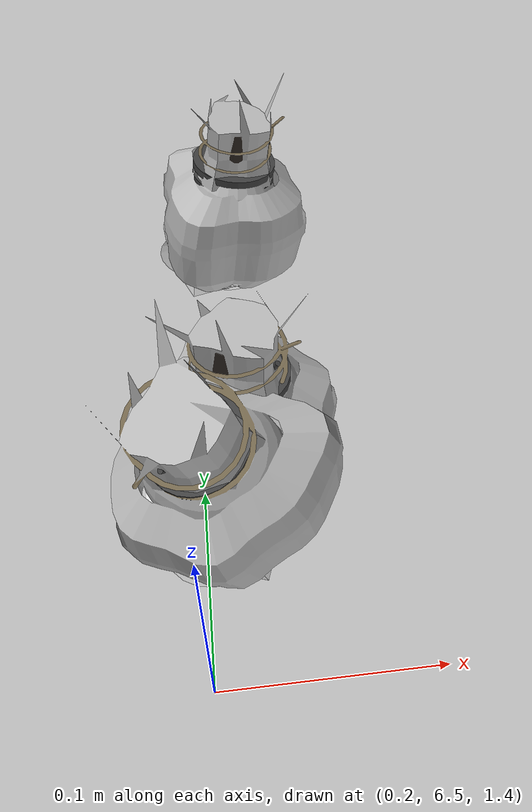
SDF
<sdf version="1.11">
 <world name="peach_orchard">
  <model name="ground">
   <static>true</static>
   <link name="link">
    <visual name="soil">
     <geometry><plane><normal>0 0 1</normal><size>32 22</size></plane></geometry>
     <material>
      <ambient>1 1 1 1</ambient>
      <diffuse>1 1 1 1</diffuse>
      <specular>0.1 0.1 0.1 1</specular>
      <pbr>
       <metal>
        <albedo_map>textures/soil_albedo.png</albedo_map>
        <normal_map type="tangent">textures/soil_normal.png</normal_map>
        <roughness>0.95</roughness>
        <metalness>0</metalness>
       </metal>
      </pbr>
     </material>
    </visual>
    <collision name="c_soil">
     <geometry><plane><normal>0 0 1</normal><size>32 22</size></plane></geometry>
    </collision>
   </link>
  </model>
  <model name="peach_tree_r2_t6_06">
   <pose>0.22 6.71632 1.44753 0 0.122108 0.0433872</pose>
   <static>true</static>
   <link name="bag">
    <visual name="bag_mesh">
     <pose>0 0 0.0466515 0 0 0</pose>
     <geometry>
      <mesh><uri>model://peach_sim/meshes/bagged_peach.glb</uri><scale>0.92563 1.10446 1.06026</scale></mesh>
     </geometry>
    </visual>
    <visual name="body">
     <pose>0 0 0.0286515 0 0 0</pose>
     <geometry><ellipsoid><radii>0.0347111 0.028716 0.0309437</radii></ellipsoid></geometry>
     <material>
      <ambient>1 1 1 1</ambient>
      <diffuse>1 1 1 1</diffuse>
      <specular>0.1 0.1 0.1 1</specular>
      <pbr>
       <metal>
        <albedo_map>textures/paper_bag_albedo.png</albedo_map>
        <normal_map type="tangent">textures/paper_bag_normal.png</normal_map>
        <roughness>0.72</roughness>
        <metalness>0</metalness>
       </metal>
      </pbr>
     </material>
    </visual>
    <visual name="bottom_fold">
     <pose>0 0 0.012 0 0 0.35</pose>
     <geometry><box><size>0.0538022 0.0330234 0.022</size></box></geometry>
     <material>
      <ambient>1 1 1 1</ambient>
      <diffuse>1 1 1 1</diffuse>
      <specular>0.1 0.1 0.1 1</specular>
      <pbr>
       <metal>
        <albedo_map>textures/paper_bag_albedo.png</albedo_map>
        <normal_map type="tangent">textures/paper_bag_normal.png</normal_map>
        <roughness>0.8</roughness>
        <metalness>0</metalness>
       </metal>
      </pbr>
     </material>
    </visual>
    <visual name="fruit">
     <pose>0 0 0.0217971 0 0 0</pose>
     <geometry><sphere><radius>0.028909</radius></sphere></geometry>
     <material>
      <ambient>1 1 1 1</ambient>
      <diffuse>1 1 1 1</diffuse>
      <specular>0.1 0.1 0.1 1</specular>
      <pbr>
       <metal>
        <albedo_map>textures/fruit_skin_albedo.png</albedo_map>
        <normal_map type="tangent">textures/fruit_skin_normal.png</normal_map>
        <roughness>0.55</roughness>
        <metalness>0</metalness>
       </metal>
      </pbr>
     </material>
    </visual>
    <visual name="neck">
     <pose>0 0 0.0663031 0 0 0</pose>
     <geometry><cylinder><radius>0.013</radius><length>0.018</length></cylinder></geometry>
     <material>
      <ambient>1 1 1 1</ambient>
      <diffuse>1 1 1 1</diffuse>
      <specular>0.1 0.1 0.1 1</specular>
      <pbr>
       <metal>
        <albedo_map>textures/paper_bag_albedo.png</albedo_map>
        <normal_map type="tangent">textures/paper_bag_normal.png</normal_map>
        <roughness>0.75</roughness>
        <metalness>0</metalness>
       </metal>
      </pbr>
     </material>
    </visual>
    <visual name="gather">
     <pose>0 0 0.0473031 0 0 0</pose>
     <geometry><cylinder><radius>0.019</radius><length>0.02</length></cylinder></geometry>
     <material>
      <ambient>1 1 1 1</ambient>
      <diffuse>1 1 1 1</diffuse>
      <specular>0.1 0.1 0.1 1</specular>
      <pbr>
       <metal>
        <albedo_map>textures/paper_bag_albedo.png</albedo_map>
        <normal_map type="tangent">textures/paper_bag_normal.png</normal_map>
        <roughness>0.8</roughness>
        <metalness>0</metalness>
       </metal>
      </pbr>
     </material>
    </visual>
    <visual name="inner_paper">
     <pose>0 0 0.0713031 0 0 0</pose>
     <geometry><cylinder><radius>0.01</radius><length>0.008</length></cylinder></geometry>
     <material>
      <ambient>0.180392 0.14902 0.133333 1</ambient>
      <diffuse>0.180392 0.14902 0.133333 1</diffuse>
      <specular>0.1 0.1 0.1 1</specular>
     </material>
    </visual>
    <visual name="wire_0">
     <pose>0 0 0.0613031 0 0 0</pose>
     <geometry><cylinder><radius>0.0205</radius><length>0.0035</length></cylinder></geometry>
     <material>
      <ambient>0.25 0.25 0.25 1</ambient>
      <diffuse>0.25 0.25 0.25 1</diffuse>
      <specular>0.1 0.1 0.1 1</specular>
     </material>
    </visual>
    <visual name="wire_1">
     <pose>0 0 0.0683031 0 0 0</pose>
     <geometry><cylinder><radius>0.0205</radius><length>0.0035</length></cylinder></geometry>
     <material>
      <ambient>0.25 0.25 0.25 1</ambient>
      <diffuse>0.25 0.25 0.25 1</diffuse>
      <specular>0.1 0.1 0.1 1</specular>
     </material>
    </visual>
    <visual name="wire_tail">
     <pose>0.01 0 0.0693031 0 0.521618 0</pose>
     <geometry><cylinder><radius>0.0012</radius><length>0.026</length></cylinder></geometry>
     <material>
      <ambient>0.25 0.25 0.25 1</ambient>
      <diffuse>0.25 0.25 0.25 1</diffuse>
      <specular>0.1 0.1 0.1 1</specular>
     </material>
    </visual>
    <collision name="c_body">
     <pose>0 0 0.0286515 0 0 0</pose>
     <geometry><cylinder><radius>0.0347111</radius><length>0.0573031</length></cylinder></geometry>
    </collision>
   </link>
  </model>
  <model name="peach_tree_r2_t6_07">
   <pose>0.22 6.57905 1.45 0 0.0210568 -0.493681</pose>
   <static>true</static>
   <link name="bag">
    <visual name="bag_mesh">
     <pose>0 0 0.0418149 0 0 -0</pose>
     <geometry>
      <mesh><uri>model://peach_sim/meshes/bagged_peach.glb</uri><scale>0.983505 1.05836 0.950338</scale></mesh>
     </geometry>
    </visual>
    <visual name="body">
     <pose>0 0 0.0238149 0 0 0</pose>
     <geometry><ellipsoid><radii>0.0368814 0.0275174 0.02572</radii></ellipsoid></geometry>
     <material>
      <ambient>1 1 1 1</ambient>
      <diffuse>1 1 1 1</diffuse>
      <specular>0.1 0.1 0.1 1</specular>
      <pbr>
       <metal>
        <albedo_map>textures/paper_bag_albedo.png</albedo_map>
        <normal_map type="tangent">textures/paper_bag_normal.png</normal_map>
        <roughness>0.72</roughness>
        <metalness>0</metalness>
       </metal>
      </pbr>
     </material>
    </visual>
    <visual name="bottom_fold">
     <pose>0 0 0.012 0 0 0.35</pose>
     <geometry><box><size>0.0571662 0.031645 0.022</size></box></geometry>
     <material>
      <ambient>1 1 1 1</ambient>
      <diffuse>1 1 1 1</diffuse>
      <specular>0.1 0.1 0.1 1</specular>
      <pbr>
       <metal>
        <albedo_map>textures/paper_bag_albedo.png</albedo_map>
        <normal_map type="tangent">textures/paper_bag_normal.png</normal_map>
        <roughness>0.8</roughness>
        <metalness>0</metalness>
       </metal>
      </pbr>
     </material>
    </visual>
    <visual name="fruit">
     <pose>0 0 0.0173232 0 0 0</pose>
     <geometry><sphere><radius>0.0242561</radius></sphere></geometry>
     <material>
      <ambient>1 1 1 1</ambient>
      <diffuse>1 1 1 1</diffuse>
      <specular>0.1 0.1 0.1 1</specular>
      <pbr>
       <metal>
        <albedo_map>textures/fruit_skin_albedo.png</albedo_map>
        <normal_map type="tangent">textures/fruit_skin_normal.png</normal_map>
        <roughness>0.55</roughness>
        <metalness>0</metalness>
       </metal>
      </pbr>
     </material>
    </visual>
    <visual name="neck">
     <pose>0 0 0.0566297 0 0 0</pose>
     <geometry><cylinder><radius>0.013</radius><length>0.018</length></cylinder></geometry>
     <material>
      <ambient>1 1 1 1</ambient>
      <diffuse>1 1 1 1</diffuse>
      <specular>0.1 0.1 0.1 1</specular>
      <pbr>
       <metal>
        <albedo_map>textures/paper_bag_albedo.png</albedo_map>
        <normal_map type="tangent">textures/paper_bag_normal.png</normal_map>
        <roughness>0.75</roughness>
        <metalness>0</metalness>
       </metal>
      </pbr>
     </material>
    </visual>
    <visual name="gather">
     <pose>0 0 0.0376297 0 0 0</pose>
     <geometry><cylinder><radius>0.019</radius><length>0.02</length></cylinder></geometry>
     <material>
      <ambient>1 1 1 1</ambient>
      <diffuse>1 1 1 1</diffuse>
      <specular>0.1 0.1 0.1 1</specular>
      <pbr>
       <metal>
        <albedo_map>textures/paper_bag_albedo.png</albedo_map>
        <normal_map type="tangent">textures/paper_bag_normal.png</normal_map>
        <roughness>0.8</roughness>
        <metalness>0</metalness>
       </metal>
      </pbr>
     </material>
    </visual>
    <visual name="inner_paper">
     <pose>0 0 0.0616297 0 0 0</pose>
     <geometry><cylinder><radius>0.01</radius><length>0.008</length></cylinder></geometry>
     <material>
      <ambient>0.180392 0.14902 0.133333 1</ambient>
      <diffuse>0.180392 0.14902 0.133333 1</diffuse>
      <specular>0.1 0.1 0.1 1</specular>
     </material>
    </visual>
    <visual name="wire_0">
     <pose>0 0 0.0516297 0 0 0</pose>
     <geometry><cylinder><radius>0.0205</radius><length>0.0035</length></cylinder></geometry>
     <material>
      <ambient>0.25 0.25 0.25 1</ambient>
      <diffuse>0.25 0.25 0.25 1</diffuse>
      <specular>0.1 0.1 0.1 1</specular>
     </material>
    </visual>
    <visual name="wire_1">
     <pose>0 0 0.0586297 0 0 0</pose>
     <geometry><cylinder><radius>0.0205</radius><length>0.0035</length></cylinder></geometry>
     <material>
      <ambient>0.25 0.25 0.25 1</ambient>
      <diffuse>0.25 0.25 0.25 1</diffuse>
      <specular>0.1 0.1 0.1 1</specular>
     </material>
    </visual>
    <visual name="wire_tail">
     <pose>0.01 0 0.0596297 0 0.521618 0</pose>
     <geometry><cylinder><radius>0.0012</radius><length>0.026</length></cylinder></geometry>
     <material>
      <ambient>0.25 0.25 0.25 1</ambient>
      <diffuse>0.25 0.25 0.25 1</diffuse>
      <specular>0.1 0.1 0.1 1</specular>
     </material>
    </visual>
    <collision name="c_body">
     <pose>0 0 0.0238149 0 0 0</pose>
     <geometry><cylinder><radius>0.0368814</radius><length>0.0476297</length></cylinder></geometry>
    </collision>
   </link>
  </model>
  <model name="peach_tree_r2_t6_08">
   <pose>0.22 6.5587 1.45 0 0.358736 -2.29648</pose>
   <static>true</static>
   <link name="bag">
    <visual name="bag_mesh">
     <pose>0 0 0.046587 0 0 -0</pose>
     <geometry>
      <mesh><uri>model://peach_sim/meshes/bagged_peach.glb</uri><scale>1.06454 1.18856 1.05879</scale></mesh>
     </geometry>
    </visual>
    <visual name="body">
     <pose>0 0 0.028587 0 0 0</pose>
     <geometry><ellipsoid><radii>0.0399204 0.0309025 0.0308739</radii></ellipsoid></geometry>
     <material>
      <ambient>1 1 1 1</ambient>
      <diffuse>1 1 1 1</diffuse>
      <specular>0.1 0.1 0.1 1</specular>
      <pbr>
       <metal>
        <albedo_map>textures/paper_bag_albedo.png</albedo_map>
        <normal_map type="tangent">textures/paper_bag_normal.png</normal_map>
        <roughness>0.72</roughness>
        <metalness>0</metalness>
       </metal>
      </pbr>
     </material>
    </visual>
    <visual name="bottom_fold">
     <pose>0 0 0.012 0 0 0.35</pose>
     <geometry><box><size>0.0618766 0.0355379 0.022</size></box></geometry>
     <material>
      <ambient>1 1 1 1</ambient>
      <diffuse>1 1 1 1</diffuse>
      <specular>0.1 0.1 0.1 1</specular>
      <pbr>
       <metal>
        <albedo_map>textures/paper_bag_albedo.png</albedo_map>
        <normal_map type="tangent">textures/paper_bag_normal.png</normal_map>
        <roughness>0.8</roughness>
        <metalness>0</metalness>
       </metal>
      </pbr>
     </material>
    </visual>
    <visual name="fruit">
     <pose>0 0 0.0209394 0 0 0</pose>
     <geometry><sphere><radius>0.0280169</radius></sphere></geometry>
     <material>
      <ambient>1 1 1 1</ambient>
      <diffuse>1 1 1 1</diffuse>
      <specular>0.1 0.1 0.1 1</specular>
      <pbr>
       <metal>
        <albedo_map>textures/fruit_skin_albedo.png</albedo_map>
        <normal_map type="tangent">textures/fruit_skin_normal.png</normal_map>
        <roughness>0.55</roughness>
        <metalness>0</metalness>
       </metal>
      </pbr>
     </material>
    </visual>
    <visual name="neck">
     <pose>0 0 0.0661739 0 0 0</pose>
     <geometry><cylinder><radius>0.013</radius><length>0.018</length></cylinder></geometry>
     <material>
      <ambient>1 1 1 1</ambient>
      <diffuse>1 1 1 1</diffuse>
      <specular>0.1 0.1 0.1 1</specular>
      <pbr>
       <metal>
        <albedo_map>textures/paper_bag_albedo.png</albedo_map>
        <normal_map type="tangent">textures/paper_bag_normal.png</normal_map>
        <roughness>0.75</roughness>
        <metalness>0</metalness>
       </metal>
      </pbr>
     </material>
    </visual>
    <visual name="gather">
     <pose>0 0 0.0471739 0 0 0</pose>
     <geometry><cylinder><radius>0.019</radius><length>0.02</length></cylinder></geometry>
     <material>
      <ambient>1 1 1 1</ambient>
      <diffuse>1 1 1 1</diffuse>
      <specular>0.1 0.1 0.1 1</specular>
      <pbr>
       <metal>
        <albedo_map>textures/paper_bag_albedo.png</albedo_map>
        <normal_map type="tangent">textures/paper_bag_normal.png</normal_map>
        <roughness>0.8</roughness>
        <metalness>0</metalness>
       </metal>
      </pbr>
     </material>
    </visual>
    <visual name="inner_paper">
     <pose>0 0 0.0711739 0 0 0</pose>
     <geometry><cylinder><radius>0.01</radius><length>0.008</length></cylinder></geometry>
     <material>
      <ambient>0.180392 0.14902 0.133333 1</ambient>
      <diffuse>0.180392 0.14902 0.133333 1</diffuse>
      <specular>0.1 0.1 0.1 1</specular>
     </material>
    </visual>
    <visual name="wire_0">
     <pose>0 0 0.0611739 0 0 0</pose>
     <geometry><cylinder><radius>0.0205</radius><length>0.0035</length></cylinder></geometry>
     <material>
      <ambient>0.25 0.25 0.25 1</ambient>
      <diffuse>0.25 0.25 0.25 1</diffuse>
      <specular>0.1 0.1 0.1 1</specular>
     </material>
    </visual>
    <visual name="wire_1">
     <pose>0 0 0.0681739 0 0 0</pose>
     <geometry><cylinder><radius>0.0205</radius><length>0.0035</length></cylinder></geometry>
     <material>
      <ambient>0.25 0.25 0.25 1</ambient>
      <diffuse>0.25 0.25 0.25 1</diffuse>
      <specular>0.1 0.1 0.1 1</specular>
     </material>
    </visual>
    <visual name="wire_tail">
     <pose>0.01 0 0.0691739 0 0.521618 0</pose>
     <geometry><cylinder><radius>0.0012</radius><length>0.026</length></cylinder></geometry>
     <material>
      <ambient>0.25 0.25 0.25 1</ambient>
      <diffuse>0.25 0.25 0.25 1</diffuse>
      <specular>0.1 0.1 0.1 1</specular>
     </material>
    </visual>
    <collision name="c_body">
     <pose>0 0 0.028587 0 0 0</pose>
     <geometry><cylinder><radius>0.0399204</radius><length>0.0571739</length></cylinder></geometry>
    </collision>
   </link>
  </model>
 </world>
</sdf>
